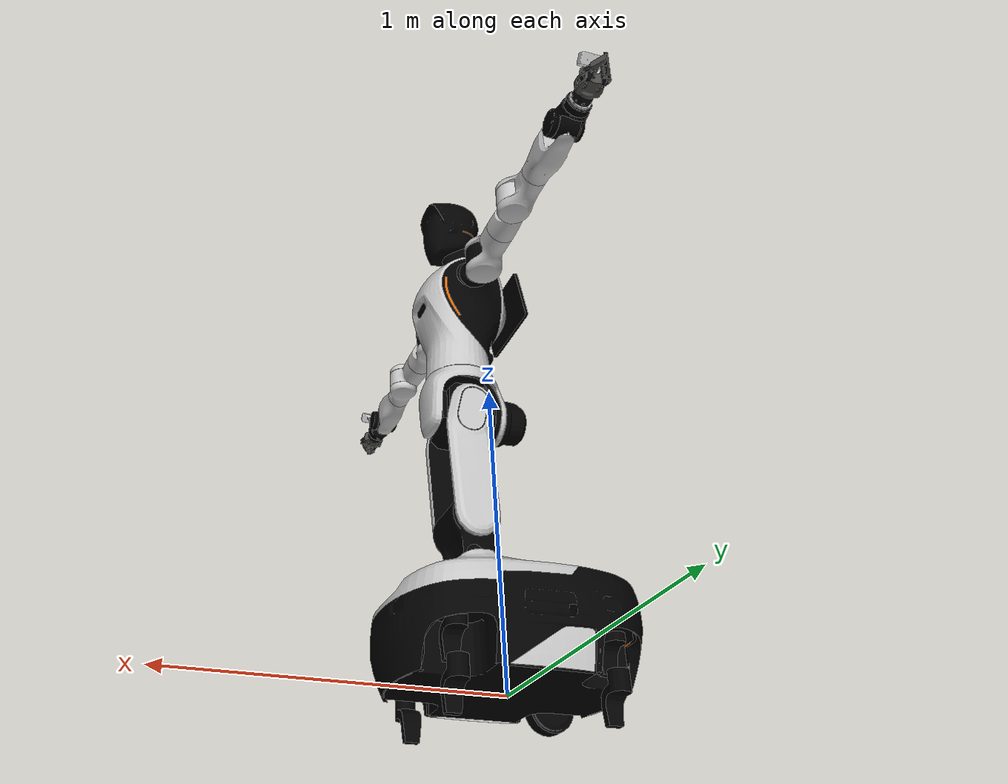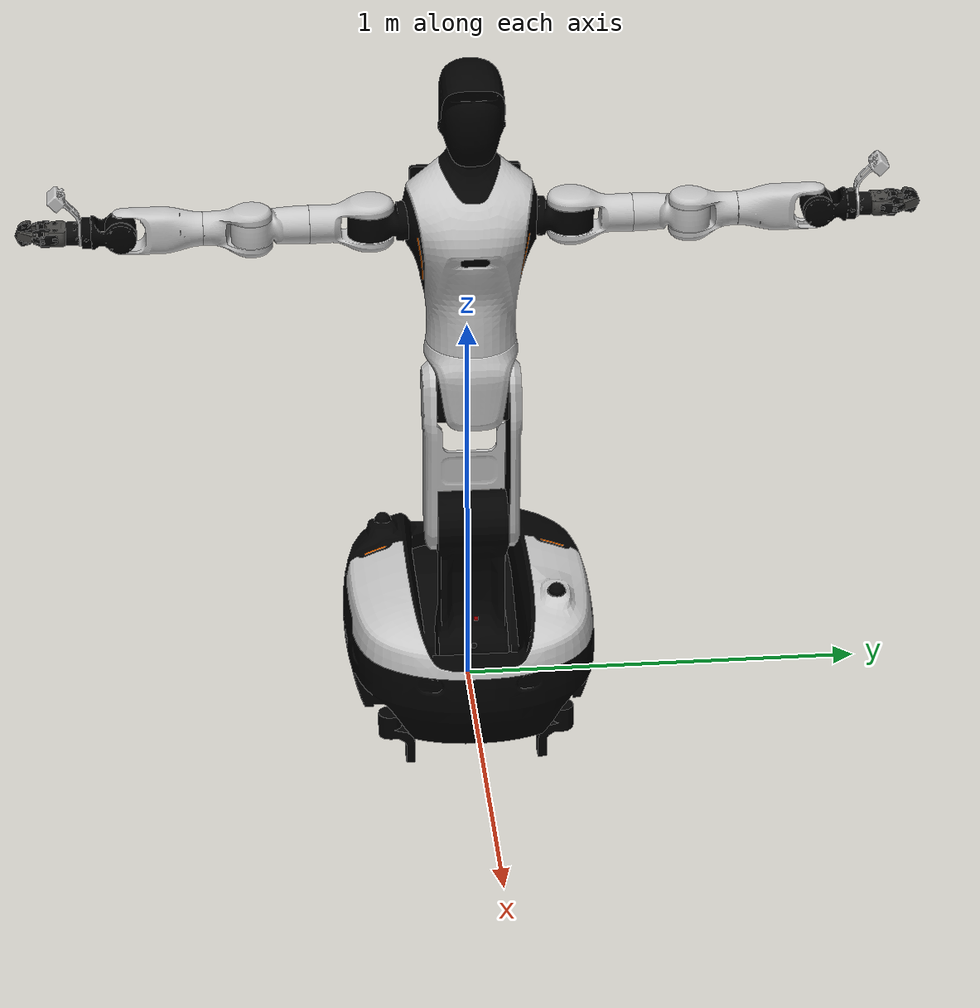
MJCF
<?xml version="1.0" ?>
<mujoco model="agibot_g2">
  <!-- AgiBot G2 (wheeled dual-arm mobile manipulator) for MuJoCo. -->
  <compiler angle="radian" meshdir="meshes/agibot_g2" autolimits="true"/>
  <default>
    <default class="g2_visual">
      <geom type="mesh" contype="0" conaffinity="0" group="2" material="g2_light"/>
    </default>
    <default class="g2_collision">
      <geom group="3" rgba="0.4 0.5 0.6 0.3" condim="3" contype="2" conaffinity="1"/>
    </default>
  </default>
  <asset>
    <mesh name="g2_body_link1" content_type="model/obj" file="g2_body_link1.obj"/>
    <mesh name="g2_convex_body_link2" content_type="model/stl" file="g2_convex_body_link2.STL"/>
    <mesh name="g2_body_link3" content_type="model/obj" file="g2_body_link3.obj"/>
    <mesh name="g2_convex_body_link3" content_type="model/stl" file="g2_convex_body_link3.STL"/>
    <mesh name="g2_convex_body_link4_1" content_type="model/stl" file="g2_convex_body_link4_1.STL"/>
    <mesh name="g2_convex_body_link4_2" content_type="model/stl" file="g2_convex_body_link4_2.STL"/>
    <mesh name="g2_convex_body_link4_3" content_type="model/stl" file="g2_convex_body_link4_3.STL"/>
    <mesh name="g2_convex_body_link5" content_type="model/stl" file="g2_convex_body_link5.STL"/>
    <mesh name="g2_head_link1" content_type="model/obj" file="g2_head_link1.obj"/>
    <mesh name="g2_head_link2" content_type="model/obj" file="g2_head_link2.obj"/>
    <mesh name="g2_convex_head_link3" content_type="model/stl" file="g2_convex_head_link3.STL"/>
    <mesh name="g2_chassis_lwheel_front_link1" content_type="model/obj" file="g2_chassis_lwheel_front_link1.obj"/>
    <mesh name="g2_chassis_lwheel_front_link2" content_type="model/obj" file="g2_chassis_lwheel_front_link2.obj"/>
    <mesh name="g2_chassis_rwheel_front_link1" content_type="model/obj" file="g2_chassis_rwheel_front_link1.obj"/>
    <mesh name="g2_chassis_rwheel_front_link2" content_type="model/obj" file="g2_chassis_rwheel_front_link2.obj"/>
    <mesh name="g2_chassis_rwheel_rear_link1" content_type="model/obj" file="g2_chassis_rwheel_rear_link1.obj"/>
    <mesh name="g2_chassis_rwheel_rear_link2" content_type="model/obj" file="g2_chassis_rwheel_rear_link2.obj"/>
    <mesh name="g2_chassis_lwheel_rear_link1" content_type="model/obj" file="g2_chassis_lwheel_rear_link1.obj"/>
    <mesh name="g2_chassis_lwheel_rear_link2" content_type="model/obj" file="g2_chassis_lwheel_rear_link2.obj"/>
    <mesh name="arm_crs_arm_link1" content_type="model/obj" file="arm_crs_arm_link1.obj"/>
    <mesh name="arm_crs_arm_link2" content_type="model/obj" file="arm_crs_arm_link2.obj"/>
    <mesh name="arm_crs_arm_link3" content_type="model/obj" file="arm_crs_arm_link3.obj"/>
    <mesh name="arm_crs_arm_link4" content_type="model/obj" file="arm_crs_arm_link4.obj"/>
    <mesh name="arm_crs_arm_link5" content_type="model/obj" file="arm_crs_arm_link5.obj"/>
    <mesh name="arm_crs_arm_link6" content_type="model/obj" file="arm_crs_arm_link6.obj"/>
    <mesh name="arm_crs_arm_link7" content_type="model/obj" file="arm_crs_arm_link7.obj"/>
    <mesh name="gripper_omnipicker_camera_link" content_type="model/obj" file="gripper_omnipicker_camera_link.obj"/>
    <mesh name="gripper_omnipicker_convex_camera_link" content_type="model/stl" file="gripper_omnipicker_convex_camera_link.STL"/>
    <mesh name="gripper_omnipicker_convex_base_link" content_type="model/stl" file="gripper_omnipicker_convex_base_link.STL"/>
    <mesh name="gripper_omnipicker_convex_inner_link1" content_type="model/stl" file="gripper_omnipicker_convex_inner_link1.STL"/>
    <mesh name="gripper_omnipicker_convex_inner_link3" content_type="model/stl" file="gripper_omnipicker_convex_inner_link3.STL"/>
    <mesh name="gripper_omnipicker_convex_inner_link4" content_type="model/stl" file="gripper_omnipicker_convex_inner_link4.STL"/>
    <mesh name="gripper_omnipicker_convex_inner_link2" content_type="model/stl" file="gripper_omnipicker_convex_inner_link2.STL"/>
    <mesh name="gripper_omnipicker_convex_outer_link1" content_type="model/stl" file="gripper_omnipicker_convex_outer_link1.STL"/>
    <mesh name="gripper_omnipicker_convex_outer_link3" content_type="model/stl" file="gripper_omnipicker_convex_outer_link3.STL"/>
    <mesh name="gripper_omnipicker_convex_outer_link4" content_type="model/stl" file="gripper_omnipicker_convex_outer_link4.STL"/>
    <mesh name="gripper_omnipicker_convex_outer_link2" content_type="model/stl" file="gripper_omnipicker_convex_outer_link2.STL"/>
    <material name="g2_light" rgba="0.85 0.86 0.88 1"/>
    <material name="g2_dark" rgba="0.15 0.16 0.18 1"/>
    <material name="g2_black" rgba="0.05 0.05 0.05 1"/>
    <mesh name="g2_base_link_m0" file="g2_base_link_m0.obj"/>
    <material name="mat_000000" rgba="0.0000 0.0000 0.0000 1"/>
    <mesh name="g2_base_link_m1" file="g2_base_link_m1.obj"/>
    <material name="mat_c3c3c3" rgba="0.7660 0.7660 0.7660 1"/>
    <mesh name="g2_base_link_m2" file="g2_base_link_m2.obj"/>
    <material name="mat_fa6e00" rgba="0.9800 0.4300 0.0000 1"/>
    <mesh name="g2_body_link2_m0" file="g2_body_link2_m0.obj"/>
    <mesh name="g2_body_link2_m1" file="g2_body_link2_m1.obj"/>
    <mesh name="g2_body_link4_m0" file="g2_body_link4_m0.obj"/>
    <mesh name="g2_body_link4_m1" file="g2_body_link4_m1.obj"/>
    <mesh name="g2_body_link5_m0" file="g2_body_link5_m0.obj"/>
    <mesh name="g2_body_link5_m1" file="g2_body_link5_m1.obj"/>
    <mesh name="g2_body_link5_m2" file="g2_body_link5_m2.obj"/>
    <mesh name="gripper_omnipicker_base_link_m0" file="gripper_omnipicker_base_link_m0.obj"/>
    <material name="mat_474643" rgba="0.2778 0.2744 0.2632 1"/>
    <mesh name="gripper_omnipicker_base_link_m1" file="gripper_omnipicker_base_link_m1.obj"/>
    <material name="mat_707070" rgba="0.4408 0.4408 0.4408 1"/>
    <mesh name="gripper_omnipicker_base_link_m2" file="gripper_omnipicker_base_link_m2.obj"/>
    <material name="mat_171717" rgba="0.0921 0.0921 0.0921 1"/>
    <mesh name="gripper_omnipicker_base_link_m3" file="gripper_omnipicker_base_link_m3.obj"/>
    <material name="mat_0a0a0a" rgba="0.0395 0.0395 0.0395 1"/>
    <mesh name="gripper_omnipicker_inner_link1_m0" file="gripper_omnipicker_inner_link1_m0.obj"/>
    <mesh name="gripper_omnipicker_inner_link1_m1" file="gripper_omnipicker_inner_link1_m1.obj"/>
    <mesh name="gripper_omnipicker_inner_link1_m2" file="gripper_omnipicker_inner_link1_m2.obj"/>
    <mesh name="gripper_omnipicker_inner_link3_m0" file="gripper_omnipicker_inner_link3_m0.obj"/>
    <mesh name="gripper_omnipicker_inner_link3_m1" file="gripper_omnipicker_inner_link3_m1.obj"/>
    <mesh name="gripper_omnipicker_inner_link4_m0" file="gripper_omnipicker_inner_link4_m0.obj"/>
    <mesh name="gripper_omnipicker_inner_link4_m1" file="gripper_omnipicker_inner_link4_m1.obj"/>
    <mesh name="gripper_omnipicker_inner_link4_m2" file="gripper_omnipicker_inner_link4_m2.obj"/>
    <mesh name="gripper_omnipicker_inner_link2_m0" file="gripper_omnipicker_inner_link2_m0.obj"/>
    <mesh name="gripper_omnipicker_inner_link2_m1" file="gripper_omnipicker_inner_link2_m1.obj"/>
    <mesh name="gripper_omnipicker_outer_link1_m0" file="gripper_omnipicker_outer_link1_m0.obj"/>
    <mesh name="gripper_omnipicker_outer_link1_m1" file="gripper_omnipicker_outer_link1_m1.obj"/>
    <mesh name="gripper_omnipicker_outer_link1_m2" file="gripper_omnipicker_outer_link1_m2.obj"/>
    <mesh name="gripper_omnipicker_outer_link3_m0" file="gripper_omnipicker_outer_link3_m0.obj"/>
    <mesh name="gripper_omnipicker_outer_link3_m1" file="gripper_omnipicker_outer_link3_m1.obj"/>
    <mesh name="gripper_omnipicker_outer_link4_m0" file="gripper_omnipicker_outer_link4_m0.obj"/>
    <mesh name="gripper_omnipicker_outer_link4_m1" file="gripper_omnipicker_outer_link4_m1.obj"/>
    <mesh name="gripper_omnipicker_outer_link4_m2" file="gripper_omnipicker_outer_link4_m2.obj"/>
    <mesh name="gripper_omnipicker_outer_link2_m0" file="gripper_omnipicker_outer_link2_m0.obj"/>
    <mesh name="gripper_omnipicker_outer_link2_m1" file="gripper_omnipicker_outer_link2_m1.obj"/>
    <mesh name="g2_head_link3_m0" file="g2_head_link3_m0.obj"/>
    <mesh name="g2_head_link3_m1" file="g2_head_link3_m1.obj"/>
  </asset>
  <worldbody>
    <body name="base_link">
      <!-- mobile base: free joint + odom/imu frame -->
      <freejoint name="base_free"/>
      <site name="base_imu" pos="0 0 0.1" size="0.01" rgba="0 0 0 0"/>
      <!-- ASSUMPTION: 2D nav lidar; source has none. Mount = chassis front, 0.30 m. -->
      <site name="lidar" pos="0.24 0 0.30" size="0.006" rgba="1 0 0 0.6"/>
      <camera name="track" mode="track" pos="-2.4 -2.4 2.0" xyaxes="0.7 -0.7 0 0.3 0.3 0.9"/>
      <geom name="chassis_box" type="box" size="0.28 0.20 0.08" pos="0 0 0.10" class="g2_collision" friction="0.4 0.01 0.001"/>
      <geom name="caster_fl" type="sphere" size="0.03" pos="0.3 0.22 -0.005" class="g2_collision" friction="0.02 0.005 0.0001" rgba="0.2 0.2 0.2 1"/>
      <geom name="caster_fr" type="sphere" size="0.03" pos="0.3 -0.22 -0.005" class="g2_collision" friction="0.02 0.005 0.0001" rgba="0.2 0.2 0.2 1"/>
      <geom name="caster_rl" type="sphere" size="0.03" pos="-0.3 0.22 -0.005" class="g2_collision" friction="0.02 0.005 0.0001" rgba="0.2 0.2 0.2 1"/>
      <geom name="caster_rr" type="sphere" size="0.03" pos="-0.3 -0.22 -0.005" class="g2_collision" friction="0.02 0.005 0.0001" rgba="0.2 0.2 0.2 1"/>
      <inertial pos="0 0 0.15" quat="0 0.707107 0 0.707107" mass="80" diaginertia="5.29894 3.50892 3.11997"/>
      <geom type="mesh" mesh="g2_base_link_m0" class="g2_visual" material="mat_000000"/>
      <geom type="mesh" mesh="g2_base_link_m1" class="g2_visual" material="mat_c3c3c3"/>
      <geom type="mesh" mesh="g2_base_link_m2" class="g2_visual" material="mat_fa6e00"/>
      <body name="body_link1" pos="0.102 0 0.144">
        <inertial pos="0 0 0.175562" mass="10" diaginertia="0.259378 0.244269 0.0390951"/>
        <joint name="idx01_body_joint1" pos="0 0 0" axis="0 1 0" range="-1.0822 0.0001" actuatorfrcrange="-50 50" damping="300.0"/>
        <geom type="mesh" mesh="g2_body_link1" class="g2_visual" material="mat_000000"/>
        <geom name="Cylinder" size="0.089146 0.0766955" quat="0.707107 0.707107 0 0" type="cylinder" class="g2_collision"/>
        <geom name="Cylinder.001" size="0.089146 0.0766955" pos="0 0 0.36" quat="0.707107 0.707107 0 0" type="cylinder" class="g2_collision"/>
        <geom name="Cube" size="0.042797 0.088309 0.175644" pos="-0.024457 0 0.18" type="box" class="g2_collision"/>
        <geom name="Cube.001" size="0.0562935 0.013531 0.120414" pos="-0.009824 0.075429 0.180136" type="box" class="g2_collision"/>
        <geom name="Cube.002" size="0.0562935 0.013531 0.120414" pos="-0.009824 -0.075429 0.180136" type="box" class="g2_collision"/>
        <body name="body_link2" pos="0 0 0.36">
          <inertial pos="0 0 0.185408" mass="12.4" diaginertia="0.360854 0.252113 0.147625"/>
          <joint name="idx02_body_joint2" pos="0 0 0" axis="0 1 0" range="-0.0001 2.653" actuatorfrcrange="-50 50" damping="300.0"/>
          <geom type="mesh" mesh="g2_body_link2_m0" class="g2_visual" material="mat_c3c3c3"/>
          <geom type="mesh" mesh="g2_body_link2_m1" class="g2_visual" material="mat_000000"/>
          <geom name="body_link2_convex_0" type="mesh" mesh="g2_convex_body_link2" class="g2_collision"/>
          <body name="body_link3" pos="0 0 0.38">
            <inertial pos="0 0 0" quat="0.5 0.5 -0.5 0.5" mass="7.3" diaginertia="0.0340642 0.0295826 0.0276827"/>
            <joint name="idx03_body_joint3" pos="0 0 0" axis="0 1 0" range="-1.907 1.039" actuatorfrcrange="-50 50" damping="300.0"/>
            <geom type="mesh" mesh="g2_body_link3" class="g2_visual" material="mat_000000"/>
            <geom name="body_link3_convex_0" type="mesh" mesh="g2_convex_body_link3" class="g2_collision"/>
            <body name="body_link4">
              <inertial pos="-0.0714498 0 0.0300405" quat="0 0.707107 0 0.707107" mass="6.25" diaginertia="0.0780649 0.0780649 0.0780649"/>
              <joint name="idx04_body_joint4" pos="0 0 0" axis="1 0 0" range="-0.4364 0.4364" actuatorfrcrange="-50 50" damping="300.0"/>
              <geom type="mesh" mesh="g2_body_link4_m0" class="g2_visual" material="mat_c3c3c3"/>
              <geom type="mesh" mesh="g2_body_link4_m1" class="g2_visual" material="mat_000000"/>
              <geom name="body_link4_convex_1" type="mesh" mesh="g2_convex_body_link4_1" class="g2_collision"/>
              <geom name="body_link4_convex_2" type="mesh" mesh="g2_convex_body_link4_2" class="g2_collision"/>
              <geom name="body_link4_convex_3" type="mesh" mesh="g2_convex_body_link4_3" class="g2_collision"/>
              <body name="body_link5" pos="0 0 0.149">
                <inertial pos="-0.0244424 0 0.136945" mass="7.9" diaginertia="0.249907 0.235349 0.0715655"/>
                <joint name="idx05_body_joint5" pos="0 0 0" axis="0 0 1" range="-3.0456 3.0456" actuatorfrcrange="-50 50" damping="300.0"/>
                <geom type="mesh" mesh="g2_body_link5_m0" class="g2_visual" material="mat_c3c3c3"/>
                <geom type="mesh" mesh="g2_body_link5_m1" class="g2_visual" material="mat_000000"/>
                <geom type="mesh" mesh="g2_body_link5_m2" class="g2_visual" material="mat_fa6e00"/>
                <geom name="body_link5_convex_0" type="mesh" mesh="g2_convex_body_link5" class="g2_collision"/>
                <body name="arm_base_link" pos="0 0 0.3085" quat="0.707107 -0.707107 0 0">
                  <inertial pos="0 0 0" mass="0.001" diaginertia="1e-06 1e-06 1e-06"/>
                  <body name="arm_l_link1" pos="0 0 0.069">
                    <inertial pos="1.875e-05 0.006003 0.1438" mass="2.0926" diaginertia="0.00524521 0.00455565 0.00237986"/>
                    <joint name="idx21_arm_l_joint1" pos="0 0 0" axis="0 0 1" range="-3.0718 3.0718" actuatorfrcrange="-108 108" frictionloss="1" damping="10.0"/>
                    <geom name="default_visual" type="mesh" mesh="arm_crs_arm_link1" class="g2_visual" material="mat_000000"/>
                    <geom name="arm_l_link1_coarse_0" size="0.0630031" pos="-0.000495911 0 0.178532" class="g2_collision"/>
                    <geom name="arm_l_link1_coarse_1" size="0.063101" pos="-0.00906754 -0.00452661 0.121429" class="g2_collision"/>
                    <body name="arm_l_link2" pos="0 0 0.1745" quat="0.707105 0.707108 0 0">
                      <inertial pos="-7.03e-06 0.05542 0.010995" quat="0.5 0.5 -0.5 0.5" mass="1.9432" diaginertia="0.00958569 0.00778924 0.00428622"/>
                      <joint name="idx22_arm_l_joint2" pos="0 0 0" axis="0 0 1" range="-2.0595 2.0595" actuatorfrcrange="-108 108" frictionloss="1" damping="10.0"/>
                      <geom type="mesh" mesh="arm_crs_arm_link2" class="g2_visual" material="mat_c3c3c3"/>
                      <geom name="arm_l_link2_coarse_0" size="0.0749826" pos="-0.00497437 0.00695419 -0.013385" class="g2_collision"/>
                      <geom name="arm_l_link2_coarse_1" size="0.0749834" pos="-0.00450134 0.00721741 0.0133584" class="g2_collision"/>
                      <geom name="arm_l_link2_coarse_2" size="0.0616553" pos="0.00102234 0.10947 0.00125504" class="g2_collision"/>
                      <body name="arm_l_link3" quat="0.707105 -0.707108 0 0">
                        <inertial pos="0.0087411 0.0019043 0.23487" mass="1.6913" diaginertia="0.00610928 0.0057534 0.00165978"/>
                        <joint name="idx23_arm_l_joint3" pos="0 0 0" axis="0 0 1" range="-3.0718 3.0718" actuatorfrcrange="-35 35" frictionloss="0.5" damping="10.0"/>
                        <geom type="mesh" mesh="arm_crs_arm_link3" class="g2_visual" material="mat_c3c3c3"/>
                        <geom name="arm_l_link3_coarse_0" size="0.0660352" pos="0.000732422 -0.00011957 0.195026" class="g2_collision"/>
                        <geom name="arm_l_link3_coarse_1" size="0.0616288" pos="0.0148926 -0.00160574 0.284405" class="g2_collision"/>
                        <body name="arm_l_link4" pos="0.018 0 0.287" quat="0.707105 0.707108 0 0">
                          <inertial pos="-0.0086935 0.045984 0.011135" quat="0.5 0.5 -0.5 0.5" mass="1.5332" diaginertia="0.0054013 0.00422288 0.00279916"/>
                          <joint name="idx24_arm_l_joint4" pos="0 0 0" axis="0 0 1" range="-2.4959 1.0123" actuatorfrcrange="-35 35" frictionloss="0.5" damping="10.0"/>
                          <geom type="mesh" mesh="arm_crs_arm_link4" class="g2_visual" material="mat_c3c3c3"/>
                          <geom name="arm_l_link4_coarse_0" size="0.0699134" pos="-0.00317383 0.00458936 -0.0118336" class="g2_collision"/>
                          <geom name="arm_l_link4_coarse_1" size="0.0690759" pos="-0.00482178 0.00458936 0.0118151" class="g2_collision"/>
                          <geom name="arm_l_link4_coarse_2" size="0.0545313" pos="-0.0123291 0.0924999 0.00394058" class="g2_collision"/>
                          <body name="arm_l_link5" pos="-0.018 0 0" quat="0.707105 -0.707108 0 0">
                            <inertial pos="-0.00036467 0.0001479 0.19902" mass="2.0095" diaginertia="0.0060028 0.00530075 0.00255015"/>
                            <joint name="idx25_arm_l_joint5" pos="0 0 0" axis="0 0 1" range="-3.0718 3.0718" actuatorfrcrange="-35 35" frictionloss="0.5" damping="10.0"/>
                            <geom type="mesh" mesh="arm_crs_arm_link5" class="g2_visual" material="mat_c3c3c3"/>
                            <geom name="arm_l_link5_coarse_0" size="0.052102" pos="0.00146484 0.0244125 0.217129" class="g2_collision"/>
                            <geom name="arm_l_link5_coarse_1" size="0.05214" pos="-0.00158691 -0.0244813 0.217918" class="g2_collision"/>
                            <geom name="arm_l_link5_coarse_2" size="0.052102" pos="0.00146484 0.0284125 0.287129" class="g2_collision"/>
                            <geom name="arm_l_link5_coarse_3" size="0.05214" pos="-0.00158691 -0.0284813 0.289178" class="g2_collision"/>
                            <geom name="arm_l_link5_coarse_4" size="0.0544705" pos="-0.000976563 0.00317946 0.156815" class="g2_collision"/>
                            <body name="arm_l_link6" pos="0 0 0.314" quat="0.707105 0.707108 0 0">
                              <inertial pos="-0.004911 0.00027206 -8.14e-05" mass="0.67002" diaginertia="0.000502625 0.000452202 0.00042586"/>
                              <joint name="idx26_arm_l_joint6" pos="0 0 0" axis="0 0 1" range="-1.0123 1.0123" actuatorfrcrange="-18 18" frictionloss="0.2" damping="10.0"/>
                              <geom type="mesh" mesh="arm_crs_arm_link6" class="g2_visual" material="mat_000000"/>
                              <geom name="arm_l_link6_coarse_0" size="0.0523497" class="g2_collision"/>
                              <body name="arm_l_link7" quat="0.499998 0.5 0.500002 0.5">
                                <inertial pos="0.0451337 4.672e-05 0.00607482" quat="0.5 0.5 0.5 0.5" mass="0.31657" diaginertia="0.000847986 0.000640472 0.000422024"/>
                                <joint name="idx27_arm_l_joint7" pos="0 0 0" axis="0 0 1" range="-1.5359 1.5359" actuatorfrcrange="-18 18" frictionloss="0.2" damping="10.0"/>
                                <geom type="mesh" mesh="arm_crs_arm_link7" class="g2_visual" material="mat_000000"/>
                                <geom name="arm_l_link7_coarse_0" size="0.04458" pos="0.0591483 0 0" class="g2_collision"/>
                                <geom name="arm_l_link7_coarse_1" size="0.04458" pos="0 0 0.02" class="g2_collision"/>
                                <geom name="arm_l_link7_coarse_2" size="0.04458" pos="0 0 -0.02" class="g2_collision"/>
                                <body name="arm_l_end_link" pos="0.095 0 0" quat="-2.59734e-06 0.707105 2.59735e-06 0.707108">
                                  <inertial pos="0 0 0" mass="0.001" diaginertia="1e-06 1e-06 1e-06"/>
                                  <body name="gripper_l_camera_link" quat="0.707107 0 0 0.707107">
                                    <inertial pos="0.012045 0.074409 0.04124" quat="0 0.707107 0 0.707107" mass="0.22805" diaginertia="0.00315368 0.00287705 0.000351349"/>
                                    <geom type="mesh" mesh="gripper_omnipicker_camera_link" class="g2_visual" material="mat_c3c3c3"/>
                                    <geom name="gripper_l_camera_link_convex_0" type="mesh" mesh="gripper_omnipicker_convex_camera_link" class="g2_collision"/>
                                  </body>
                                  <body name="gripper_l_base_link" pos="0 0 0.0051" quat="0.707107 0 0 0.707107">
                                    <inertial pos="-0.00013356 1.5301e-05 0.03322" mass="0.23588" diaginertia="0.000237595 0.00020119 0.000140512"/>
                                    <geom type="mesh" mesh="gripper_omnipicker_base_link_m0" class="g2_visual" material="mat_474643"/>
                                    <geom type="mesh" mesh="gripper_omnipicker_base_link_m1" class="g2_visual" material="mat_707070"/>
                                    <geom type="mesh" mesh="gripper_omnipicker_base_link_m2" class="g2_visual" material="mat_171717"/>
                                    <geom type="mesh" mesh="gripper_omnipicker_base_link_m3" class="g2_visual" material="mat_0a0a0a"/>
                                    <geom name="gripper_l_base_link_convex_0" type="mesh" mesh="gripper_omnipicker_convex_base_link" class="g2_collision"/>
                                    <body name="gripper_l_inner_link1" pos="0 -0.0195 0.0565" quat="0.707092 -0.00464826 -0.707092 -0.00464826">
                                      <inertial pos="0.0094685 0.0068806 6.5437e-05" quat="0.5 0.5 -0.5 0.5" mass="0.025428" diaginertia="1.0471e-05 9.17208e-06 3.8334e-06"/>
                                      <joint name="idx31_gripper_l_inner_joint1" pos="0 0 0" axis="0 0 1" range="-0.785398 0" actuatorfrcrange="-10 10" damping="0.5"/>
                                      <geom type="mesh" mesh="gripper_omnipicker_inner_link1_m0" class="g2_visual" material="mat_0a0a0a"/>
                                      <geom type="mesh" mesh="gripper_omnipicker_inner_link1_m1" class="g2_visual" material="mat_707070"/>
                                      <geom type="mesh" mesh="gripper_omnipicker_inner_link1_m2" class="g2_visual" material="mat_171717"/>
                                      <geom name="gripper_l_inner_link1_convex_0" type="mesh" mesh="gripper_omnipicker_convex_inner_link1" class="g2_collision"/>
                                      <body name="gripper_l_inner_link3" pos="0.030852 -0.018551 0" quat="0 1 0 0">
                                        <inertial pos="0.0088027 -0.007035 1.6424e-05" quat="0.5 0.5 0.5 0.5" mass="0.0040132" diaginertia="3.84239e-07 3.61856e-07 7.91304e-08"/>
                                        <joint name="idx32_gripper_l_inner_joint3" pos="0 0 0" axis="0 0 1" range="-2 2" actuatorfrcrange="-10 10" damping="0.5"/>
                                        <geom type="mesh" mesh="gripper_omnipicker_inner_link3_m0" class="g2_visual" material="mat_0a0a0a"/>
                                        <geom type="mesh" mesh="gripper_omnipicker_inner_link3_m1" class="g2_visual" material="mat_707070"/>
                                        <geom name="gripper_l_inner_link3_convex_0" type="mesh" mesh="gripper_omnipicker_convex_inner_link3" class="g2_collision"/>
                                        <body name="gripper_l_inner_link4" pos="0.018118 -0.01574 0">
                                          <inertial pos="0.012508 -0.0079729 9.4339e-05" quat="0.5 0.5 0.5 0.5" mass="0.018029" diaginertia="4.22802e-06 3.98173e-06 1.34445e-06"/>
                                          <joint name="idx33_gripper_l_inner_joint4" pos="0 0 0" axis="0 0 1" range="-2 2" actuatorfrcrange="-10 10" damping="0.5"/>
                                          <geom type="mesh" mesh="gripper_omnipicker_inner_link4_m0" class="g2_visual" material="mat_0a0a0a"/>
                                          <geom type="mesh" mesh="gripper_omnipicker_inner_link4_m1" class="g2_visual" material="mat_707070"/>
                                          <geom type="mesh" mesh="gripper_omnipicker_inner_link4_m2" class="g2_visual" material="mat_474643"/>
                                          <geom name="gripper_l_inner_link4_convex_0" type="mesh" mesh="gripper_omnipicker_convex_inner_link4" class="g2_collision"/>
                                          <body name="gripper_l_inner_link2" pos="0 -0.01 0">
                                            <inertial pos="0.014869 -0.0036066 0.00029307" quat="0.5 0.5 0.5 0.5" mass="0.022591" diaginertia="2.98054e-05 2.54035e-05 4.81132e-06"/>
                                            <joint name="idx39_gripper_l_inner_joint0" pos="0 0 0" axis="0 0 1" range="-2 2" actuatorfrcrange="-10 10" damping="0.5"/>
                                            <geom type="mesh" mesh="gripper_omnipicker_inner_link2_m0" class="g2_visual" material="mat_0a0a0a"/>
                                            <geom type="mesh" mesh="gripper_omnipicker_inner_link2_m1" class="g2_visual" material="mat_707070"/>
                                            <geom name="gripper_l_inner_link2_convex_0" type="mesh" mesh="gripper_omnipicker_convex_inner_link2" class="g2_collision"/>
                                          </body>
                                        </body>
                                      </body>
                                    </body>
                                    <body name="gripper_l_outer_link1" pos="0 0.0195 0.0565" quat="0.707092 -0.00464826 -0.707092 -0.00464826">
                                      <inertial pos="0.0095051 -0.0068479 6.8268e-05" quat="0.5 0.5 -0.5 0.5" mass="0.025428" diaginertia="1.04131e-05 9.14703e-06 3.8019e-06"/>
                                      <joint name="idx41_gripper_l_outer_joint1" pos="0 0 0" axis="0 0 1" range="0 0.785398" actuatorfrcrange="-10 10" damping="0.5"/>
                                      <geom type="mesh" mesh="gripper_omnipicker_outer_link1_m0" class="g2_visual" material="mat_0a0a0a"/>
                                      <geom type="mesh" mesh="gripper_omnipicker_outer_link1_m1" class="g2_visual" material="mat_707070"/>
                                      <geom type="mesh" mesh="gripper_omnipicker_outer_link1_m2" class="g2_visual" material="mat_171717"/>
                                      <geom name="gripper_l_outer_link1_convex_0" type="mesh" mesh="gripper_omnipicker_convex_outer_link1" class="g2_collision"/>
                                      <body name="gripper_l_outer_link3" pos="0.030852 0.018551 0" quat="0 1 0 0">
                                        <inertial pos="0.0088027 0.007035 -1.6424e-05" quat="0.5 0.5 0.5 0.5" mass="0.0040132" diaginertia="3.84239e-07 3.61856e-07 7.91304e-08"/>
                                        <joint name="idx42_gripper_l_outer_joint3" pos="0 0 0" axis="0 0 1" range="-2 2" actuatorfrcrange="-10 10" damping="0.5"/>
                                        <geom type="mesh" mesh="gripper_omnipicker_outer_link3_m0" class="g2_visual" material="mat_0a0a0a"/>
                                        <geom type="mesh" mesh="gripper_omnipicker_outer_link3_m1" class="g2_visual" material="mat_707070"/>
                                        <geom name="gripper_l_outer_link3_convex_0" type="mesh" mesh="gripper_omnipicker_convex_outer_link3" class="g2_collision"/>
                                        <body name="gripper_l_outer_link4" pos="0.018118 0.01574 0">
                                          <inertial pos="0.016206 0.0094593 4.7668e-05" mass="0.035835" diaginertia="1.72785e-05 1.14805e-05 5.89724e-06"/>
                                          <joint name="idx43_gripper_l_outer_joint4" pos="0 0 0" axis="0 0 1" range="-2 2" actuatorfrcrange="-10 10" damping="0.5"/>
                                          <geom type="mesh" mesh="gripper_omnipicker_outer_link4_m0" class="g2_visual" material="mat_0a0a0a"/>
                                          <geom type="mesh" mesh="gripper_omnipicker_outer_link4_m1" class="g2_visual" material="mat_707070"/>
                                          <geom type="mesh" mesh="gripper_omnipicker_outer_link4_m2" class="g2_visual" material="mat_474643"/>
                                          <geom name="gripper_l_outer_link4_convex_0" type="mesh" mesh="gripper_omnipicker_convex_outer_link4" class="g2_collision"/>
                                          <body name="gripper_l_outer_link2" pos="0 0.01 0">
                                            <inertial pos="0.016268 0.0040555 0.00030323" quat="0.5 0.5 0.5 0.5" mass="0.025142" diaginertia="3.55715e-05 2.94437e-05 6.69628e-06"/>
                                            <joint name="idx49_gripper_l_outer_joint0" pos="0 0 0" axis="0 0 1" range="-2 2" actuatorfrcrange="-10 10" damping="0.5"/>
                                            <geom type="mesh" mesh="gripper_omnipicker_outer_link2_m0" class="g2_visual" material="mat_0a0a0a"/>
                                            <geom type="mesh" mesh="gripper_omnipicker_outer_link2_m1" class="g2_visual" material="mat_707070"/>
                                            <geom name="gripper_l_outer_link2_convex_0" type="mesh" mesh="gripper_omnipicker_convex_outer_link2" class="g2_collision"/>
                                          </body>
                                        </body>
                                      </body>
                                    </body>
                                  </body>
                                </body>
                              </body>
                            </body>
                          </body>
                        </body>
                      </body>
                    </body>
                  </body>
                  <body name="arm_r_link1" pos="0 0 -0.069" quat="0 1 0 0">
                    <inertial pos="1.875e-05 0.006003 0.1438" mass="2.0926" diaginertia="0.00524521 0.00455565 0.00237986"/>
                    <joint name="idx61_arm_r_joint1" pos="0 0 0" axis="0 0 1" range="-3.0718 3.0718" actuatorfrcrange="-108 108" frictionloss="1" damping="10.0"/>
                    <geom type="mesh" mesh="arm_crs_arm_link1" class="g2_visual" material="mat_000000"/>
                    <geom name="arm_r_link1_coarse_0" size="0.0630031" pos="-0.000495911 0 0.178532" class="g2_collision"/>
                    <geom name="arm_r_link1_coarse_1" size="0.063101" pos="-0.00906754 -0.00452661 0.121429" class="g2_collision"/>
                    <body name="arm_r_link2" pos="0 0 0.1745" quat="0.707107 0.707107 0 0">
                      <inertial pos="-7.03e-06 0.05542 0.010995" quat="0.5 0.5 -0.5 0.5" mass="1.9432" diaginertia="0.00958569 0.00778924 0.00428622"/>
                      <joint name="idx62_arm_r_joint2" pos="0 0 0" axis="0 0 1" range="-2.0595 2.0595" actuatorfrcrange="-108 108" frictionloss="1" damping="10.0"/>
                      <geom type="mesh" mesh="arm_crs_arm_link2" class="g2_visual" material="mat_c3c3c3"/>
                      <geom name="arm_r_link2_coarse_0" size="0.0749826" pos="-0.00497437 0.00695419 -0.013385" class="g2_collision"/>
                      <geom name="arm_r_link2_coarse_1" size="0.0749834" pos="-0.00450134 0.00721741 0.0133584" class="g2_collision"/>
                      <geom name="arm_r_link2_coarse_2" size="0.0616553" pos="0.00102234 0.10947 0.00125504" class="g2_collision"/>
                      <body name="arm_r_link3" quat="0.707107 -0.707107 0 0">
                        <inertial pos="0.0087411 0.0019043 0.23487" mass="1.6913" diaginertia="0.00610928 0.0057534 0.00165978"/>
                        <joint name="idx63_arm_r_joint3" pos="0 0 0" axis="0 0 1" range="-3.0718 3.0718" actuatorfrcrange="-35 35" frictionloss="0.5" damping="10.0"/>
                        <geom type="mesh" mesh="arm_crs_arm_link3" class="g2_visual" material="mat_c3c3c3"/>
                        <geom name="arm_r_link3_coarse_0" size="0.0660352" pos="0.000732422 -0.00011957 0.195026" class="g2_collision"/>
                        <geom name="arm_r_link3_coarse_1" size="0.0616288" pos="0.0148926 -0.00160574 0.284405" class="g2_collision"/>
                        <body name="arm_r_link4" pos="0.018 0 0.287" quat="0.707107 0.707107 0 0">
                          <inertial pos="-0.0086935 0.045984 0.011135" quat="0.5 0.5 -0.5 0.5" mass="1.5332" diaginertia="0.0054013 0.00422288 0.00279916"/>
                          <joint name="idx64_arm_r_joint4" pos="0 0 0" axis="0 0 1" range="-2.4959 1.0123" actuatorfrcrange="-35 35" frictionloss="0.5" damping="10.0"/>
                          <geom type="mesh" mesh="arm_crs_arm_link4" class="g2_visual" material="mat_c3c3c3"/>
                          <geom name="arm_r_link4_coarse_0" size="0.0699134" pos="-0.00317383 0.00458936 -0.0118336" class="g2_collision"/>
                          <geom name="arm_r_link4_coarse_1" size="0.0690759" pos="-0.00482178 0.00458936 0.0118151" class="g2_collision"/>
                          <geom name="arm_r_link4_coarse_2" size="0.0545313" pos="-0.0123291 0.0924999 0.00394058" class="g2_collision"/>
                          <body name="arm_r_link5" pos="-0.018 0 0" quat="0.707107 -0.707107 0 0">
                            <inertial pos="0.00036663 -0.00041429 0.198891" mass="1.9854" diaginertia="0.00592806 0.00523648 0.00251751"/>
                            <joint name="idx65_arm_r_joint5" pos="0 0 0" axis="0 0 1" range="-3.0718 3.0718" actuatorfrcrange="-35 35" frictionloss="0.5" damping="10.0"/>
                            <geom type="mesh" mesh="arm_crs_arm_link5" class="g2_visual" material="mat_c3c3c3"/>
                            <geom name="arm_r_link5_coarse_0" size="0.052102" pos="0.00146484 0.0244125 0.217129" class="g2_collision"/>
                            <geom name="arm_r_link5_coarse_1" size="0.05214" pos="-0.00158691 -0.0244813 0.217918" class="g2_collision"/>
                            <geom name="arm_r_link5_coarse_2" size="0.052102" pos="0.00146484 0.0284125 0.287129" class="g2_collision"/>
                            <geom name="arm_r_link5_coarse_3" size="0.05214" pos="-0.00158691 -0.0284813 0.289178" class="g2_collision"/>
                            <geom name="arm_r_link5_coarse_4" size="0.0544705" pos="-0.000976563 0.00317946 0.156815" class="g2_collision"/>
                            <body name="arm_r_link6" pos="0 0 0.314" quat="0.707107 0.707107 0 0">
                              <inertial pos="-0.00458177 -0.00027029 9.098e-05" mass="0.645948" diaginertia="0.000484494 0.00043524 0.000409886"/>
                              <joint name="idx66_arm_r_joint6" pos="0 0 0" axis="0 0 1" range="-1.0123 1.0123" actuatorfrcrange="-18 18" frictionloss="0.2" damping="10.0"/>
                              <geom type="mesh" mesh="arm_crs_arm_link6" class="g2_visual" material="mat_000000"/>
                              <geom name="arm_r_link6_coarse_0" size="0.0523497" class="g2_collision"/>
                              <body name="arm_r_link7" quat="0.5 0.5 0.5 0.5">
                                <inertial pos="0.0451337 4.672e-05 0.00607482" quat="0.5 0.5 0.5 0.5" mass="0.31658" diaginertia="0.000848013 0.000640492 0.000422037"/>
                                <joint name="idx67_arm_r_joint7" pos="0 0 0" axis="0 0 1" range="-1.5359 1.5359" actuatorfrcrange="-18 18" frictionloss="0.2" damping="10.0"/>
                                <geom type="mesh" mesh="arm_crs_arm_link7" class="g2_visual" material="mat_000000"/>
                                <geom name="arm_r_link7_coarse_0" size="0.04458" pos="0.0591483 0 0" class="g2_collision"/>
                                <geom name="arm_r_link7_coarse_1" size="0.04458" pos="0 0 0.02" class="g2_collision"/>
                                <geom name="arm_r_link7_coarse_2" size="0.04458" pos="0 0 -0.02" class="g2_collision"/>
                                <body name="arm_r_end_link" pos="0.095 0 0" quat="0 0.707107 0 0.707107">
                                  <inertial pos="0 0 0" mass="0.001" diaginertia="1e-06 1e-06 1e-06"/>
                                  <body name="gripper_r_camera_link" quat="0.707107 0 0 -0.707107">
                                    <inertial pos="0.012045 0.074409 0.04124" quat="0 0.707107 0 0.707107" mass="0.22805" diaginertia="0.00315368 0.00287705 0.000351349"/>
                                    <geom type="mesh" mesh="gripper_omnipicker_camera_link" class="g2_visual" material="mat_c3c3c3"/>
                                    <geom name="gripper_r_camera_link_convex_0" type="mesh" mesh="gripper_omnipicker_convex_camera_link" class="g2_collision"/>
                                  </body>
                                  <body name="gripper_r_base_link" pos="0 0 0.0051" quat="0.707107 0 0 0.707107">
                                    <inertial pos="-0.00013356 1.5301e-05 0.03322" mass="0.23588" diaginertia="0.000237595 0.00020119 0.000140512"/>
                                    <geom type="mesh" mesh="gripper_omnipicker_base_link_m0" class="g2_visual" material="mat_474643"/>
                                    <geom type="mesh" mesh="gripper_omnipicker_base_link_m1" class="g2_visual" material="mat_707070"/>
                                    <geom type="mesh" mesh="gripper_omnipicker_base_link_m2" class="g2_visual" material="mat_171717"/>
                                    <geom type="mesh" mesh="gripper_omnipicker_base_link_m3" class="g2_visual" material="mat_0a0a0a"/>
                                    <geom name="gripper_r_base_link_convex_0" type="mesh" mesh="gripper_omnipicker_convex_base_link" class="g2_collision"/>
                                    <body name="gripper_r_inner_link1" pos="0 -0.0195 0.0565" quat="0.707092 -0.00464826 -0.707092 -0.00464826">
                                      <inertial pos="0.0094685 0.0068806 6.5437e-05" quat="0.5 0.5 -0.5 0.5" mass="0.025428" diaginertia="1.0471e-05 9.17208e-06 3.8334e-06"/>
                                      <joint name="idx71_gripper_r_inner_joint1" pos="0 0 0" axis="0 0 1" range="-0.785398 0" actuatorfrcrange="-10 10" damping="0.5"/>
                                      <geom type="mesh" mesh="gripper_omnipicker_inner_link1_m0" class="g2_visual" material="mat_0a0a0a"/>
                                      <geom type="mesh" mesh="gripper_omnipicker_inner_link1_m1" class="g2_visual" material="mat_707070"/>
                                      <geom type="mesh" mesh="gripper_omnipicker_inner_link1_m2" class="g2_visual" material="mat_171717"/>
                                      <geom name="gripper_r_inner_link1_convex_0" type="mesh" mesh="gripper_omnipicker_convex_inner_link1" class="g2_collision"/>
                                      <body name="gripper_r_inner_link3" pos="0.030852 -0.018551 0" quat="0 1 0 0">
                                        <inertial pos="0.0088027 -0.007035 1.6424e-05" quat="0.5 0.5 0.5 0.5" mass="0.0040132" diaginertia="3.84239e-07 3.61856e-07 7.91304e-08"/>
                                        <joint name="idx72_gripper_r_inner_joint3" pos="0 0 0" axis="0 0 1" range="-2 2" actuatorfrcrange="-10 10" damping="0.5"/>
                                        <geom type="mesh" mesh="gripper_omnipicker_inner_link3_m0" class="g2_visual" material="mat_0a0a0a"/>
                                        <geom type="mesh" mesh="gripper_omnipicker_inner_link3_m1" class="g2_visual" material="mat_707070"/>
                                        <geom name="gripper_r_inner_link3_convex_0" type="mesh" mesh="gripper_omnipicker_convex_inner_link3" class="g2_collision"/>
                                        <body name="gripper_r_inner_link4" pos="0.018118 -0.01574 0">
                                          <inertial pos="0.012508 -0.0079729 9.4339e-05" quat="0.5 0.5 0.5 0.5" mass="0.018029" diaginertia="4.22802e-06 3.98173e-06 1.34445e-06"/>
                                          <joint name="idx73_gripper_r_inner_joint4" pos="0 0 0" axis="0 0 1" range="-2 2" actuatorfrcrange="-10 10" damping="0.5"/>
                                          <geom type="mesh" mesh="gripper_omnipicker_inner_link4_m0" class="g2_visual" material="mat_0a0a0a"/>
                                          <geom type="mesh" mesh="gripper_omnipicker_inner_link4_m1" class="g2_visual" material="mat_707070"/>
                                          <geom type="mesh" mesh="gripper_omnipicker_inner_link4_m2" class="g2_visual" material="mat_474643"/>
                                          <geom name="gripper_r_inner_link4_convex_0" type="mesh" mesh="gripper_omnipicker_convex_inner_link4" class="g2_collision"/>
                                          <body name="gripper_r_inner_link2" pos="0 -0.01 0">
                                            <inertial pos="0.014869 -0.0036066 0.00029307" quat="0.5 0.5 0.5 0.5" mass="0.022591" diaginertia="2.98054e-05 2.54035e-05 4.81132e-06"/>
                                            <joint name="idx79_gripper_r_inner_joint0" pos="0 0 0" axis="0 0 1" range="-2 2" actuatorfrcrange="-10 10" damping="0.5"/>
                                            <geom type="mesh" mesh="gripper_omnipicker_inner_link2_m0" class="g2_visual" material="mat_0a0a0a"/>
                                            <geom type="mesh" mesh="gripper_omnipicker_inner_link2_m1" class="g2_visual" material="mat_707070"/>
                                            <geom name="gripper_r_inner_link2_convex_0" type="mesh" mesh="gripper_omnipicker_convex_inner_link2" class="g2_collision"/>
                                          </body>
                                        </body>
                                      </body>
                                    </body>
                                    <body name="gripper_r_outer_link1" pos="0 0.0195 0.0565" quat="0.707092 -0.00464826 -0.707092 -0.00464826">
                                      <inertial pos="0.0095051 -0.0068479 6.8268e-05" quat="0.5 0.5 -0.5 0.5" mass="0.025428" diaginertia="1.04131e-05 9.14703e-06 3.8019e-06"/>
                                      <joint name="idx81_gripper_r_outer_joint1" pos="0 0 0" axis="0 0 1" range="0 0.785398" actuatorfrcrange="-10 10" damping="0.5"/>
                                      <geom type="mesh" mesh="gripper_omnipicker_outer_link1_m0" class="g2_visual" material="mat_0a0a0a"/>
                                      <geom type="mesh" mesh="gripper_omnipicker_outer_link1_m1" class="g2_visual" material="mat_707070"/>
                                      <geom type="mesh" mesh="gripper_omnipicker_outer_link1_m2" class="g2_visual" material="mat_171717"/>
                                      <geom name="gripper_r_outer_link1_convex_0" type="mesh" mesh="gripper_omnipicker_convex_outer_link1" class="g2_collision"/>
                                      <body name="gripper_r_outer_link3" pos="0.030852 0.018551 0" quat="0 1 0 0">
                                        <inertial pos="0.0088027 0.007035 -1.6424e-05" quat="0.5 0.5 0.5 0.5" mass="0.0040132" diaginertia="3.84239e-07 3.61856e-07 7.91304e-08"/>
                                        <joint name="idx82_gripper_r_outer_joint3" pos="0 0 0" axis="0 0 1" range="-2 2" actuatorfrcrange="-10 10" damping="0.5"/>
                                        <geom type="mesh" mesh="gripper_omnipicker_outer_link3_m0" class="g2_visual" material="mat_0a0a0a"/>
                                        <geom type="mesh" mesh="gripper_omnipicker_outer_link3_m1" class="g2_visual" material="mat_707070"/>
                                        <geom name="gripper_r_outer_link3_convex_0" type="mesh" mesh="gripper_omnipicker_convex_outer_link3" class="g2_collision"/>
                                        <body name="gripper_r_outer_link4" pos="0.018118 0.01574 0">
                                          <inertial pos="0.016206 0.0094593 4.7668e-05" mass="0.035835" diaginertia="1.72785e-05 1.14805e-05 5.89724e-06"/>
                                          <joint name="idx83_gripper_r_outer_joint4" pos="0 0 0" axis="0 0 1" range="-2 2" actuatorfrcrange="-10 10" damping="0.5"/>
                                          <geom type="mesh" mesh="gripper_omnipicker_outer_link4_m0" class="g2_visual" material="mat_0a0a0a"/>
                                          <geom type="mesh" mesh="gripper_omnipicker_outer_link4_m1" class="g2_visual" material="mat_707070"/>
                                          <geom type="mesh" mesh="gripper_omnipicker_outer_link4_m2" class="g2_visual" material="mat_474643"/>
                                          <geom name="gripper_r_outer_link4_convex_0" type="mesh" mesh="gripper_omnipicker_convex_outer_link4" class="g2_collision"/>
                                          <body name="gripper_r_outer_link2" pos="0 0.01 0">
                                            <inertial pos="0.016268 0.0040555 0.00030323" quat="0.5 0.5 0.5 0.5" mass="0.025142" diaginertia="3.55715e-05 2.94437e-05 6.69628e-06"/>
                                            <joint name="idx89_gripper_r_outer_joint0" pos="0 0 0" axis="0 0 1" range="-2 2" actuatorfrcrange="-10 10" damping="0.5"/>
                                            <geom type="mesh" mesh="gripper_omnipicker_outer_link2_m0" class="g2_visual" material="mat_0a0a0a"/>
                                            <geom type="mesh" mesh="gripper_omnipicker_outer_link2_m1" class="g2_visual" material="mat_707070"/>
                                            <geom name="gripper_r_outer_link2_convex_0" type="mesh" mesh="gripper_omnipicker_convex_outer_link2" class="g2_collision"/>
                                          </body>
                                        </body>
                                      </body>
                                    </body>
                                  </body>
                                </body>
                              </body>
                            </body>
                          </body>
                        </body>
                      </body>
                    </body>
                  </body>
                </body>
                <body name="head_base_link" pos="-0.013 0 0.496">
                  <inertial pos="0 0 0" mass="0.001" diaginertia="1e-06 1e-06 1e-06"/>
                </body>
                <body name="head_link1" pos="-0.013 0 0.496">
                  <inertial pos="0 0 -0.0288855" mass="0.245638" diaginertia="0.000600158 0.000600158 0.000600158"/>
                  <joint name="idx11_head_joint1" pos="0 0 0" axis="0 0 1" range="-0.781 0.781" actuatorfrcrange="-50 50" damping="3.0"/>
                  <geom type="mesh" mesh="g2_head_link1" class="g2_visual" material="mat_000000"/>
                  <body name="head_link2" pos="0.03335 0 0.07">
                    <inertial pos="-0.0363591 0 0" quat="0.5 0.5 0.5 0.5" mass="0.0944987" diaginertia="5.3548e-05 5.04287e-05 3.51098e-05"/>
                    <joint name="idx12_head_joint2" pos="0 0 0" axis="1 0 0" range="-0.151 0.151" actuatorfrcrange="-50 50" damping="3.0"/>
                    <geom type="mesh" mesh="g2_head_link2" class="g2_visual" material="mat_000000"/>
                    <body name="head_link3" pos="-0.03035 0 0">
                      <camera name="head_cam" pos="0.06 0 0.05" xyaxes="0 -1 0 0 0 1" fovy="58"/>
                      <inertial pos="-0.00327293 0 0.0163618" mass="2.5" diaginertia="0.0175895 0.0142253 0.0106342"/>
                      <joint name="idx13_head_joint3" pos="0 0 0" axis="0 1 0" range="-0.0181 0.5231" actuatorfrcrange="-50 50" damping="3.0"/>
                      <geom type="mesh" mesh="g2_head_link3_m0" class="g2_visual" material="mat_000000"/>
                      <geom type="mesh" mesh="g2_head_link3_m1" class="g2_visual" material="mat_fa6e00"/>
                      <geom name="head_link3_convex_0" type="mesh" mesh="g2_convex_head_link3" class="g2_collision"/>
                    </body>
                  </body>
                </body>
              </body>
            </body>
          </body>
        </body>
      </body>
      <body name="chassis_link">
        <inertial pos="0 0 0" mass="0.001" diaginertia="1e-06 1e-06 1e-06"/>
        <body name="chassis_lwheel_front_link1" pos="0.23 0.218 0.16675">
          <inertial pos="4.8347e-05 -0.021386 -0.055149" mass="0.59301" diaginertia="0.00116226 0.00109456 0.000271251"/>
          <geom type="mesh" mesh="g2_chassis_lwheel_front_link1" class="g2_visual" material="mat_000000"/>
          <body name="chassis_lwheel_front_link2" pos="0 -5e-05 -0.13675">
            <inertial pos="-2.3442e-06 -0.0013086 1.0892e-05" quat="0.5 0.5 0.5 0.5" mass="3.6283" diaginertia="0.00828771 0.00571362 0.00538079"/>
            <joint name="idx112_chassis_lwheel_front_joint2" pos="0 0 0" axis="0 1 0" actuatorfrcrange="-8 8"/>
            <geom type="mesh" mesh="g2_chassis_lwheel_front_link2" class="g2_visual" material="mat_000000"/>
            <geom name="chassis_lwheel_front_link2_tyre" size="0.07 0.02" quat="0.707107 0.707107 0 0" type="cylinder" class="g2_collision" condim="3" friction="0.5 0.01 0.001" priority="2" contype="2" conaffinity="1" rgba="0.05 0.05 0.05 1"/>
          </body>
        </body>
        <body name="chassis_rwheel_front_link1" pos="0.23 -0.218 0.16675">
          <inertial pos="-4.8347e-05 0.021386 -0.055149" mass="0.59301" diaginertia="0.00116226 0.00109456 0.000271251"/>
          <geom type="mesh" mesh="g2_chassis_rwheel_front_link1" class="g2_visual" material="mat_000000"/>
          <body name="chassis_rwheel_front_link2" pos="0 5e-05 -0.13675">
            <inertial pos="2.3442e-06 0.0013086 1.0892e-05" quat="0.5 0.5 0.5 0.5" mass="3.6283" diaginertia="0.00828771 0.00571362 0.00538079"/>
            <joint name="idx132_chassis_rwheel_front_joint2" pos="0 0 0" axis="0 1 0" actuatorfrcrange="-8 8"/>
            <geom type="mesh" mesh="g2_chassis_rwheel_front_link2" class="g2_visual" material="mat_000000"/>
            <geom name="chassis_rwheel_front_link2_tyre" size="0.07 0.02" quat="0.707107 0.707107 0 0" type="cylinder" class="g2_collision" condim="3" friction="0.5 0.01 0.001" priority="2" contype="2" conaffinity="1" rgba="0.05 0.05 0.05 1"/>
          </body>
        </body>
        <body name="chassis_rwheel_rear_link1" pos="-0.23 -0.218 0.16675">
          <inertial pos="-4.8347e-05 0.021386 -0.055149" mass="0.59301" diaginertia="0.00116226 0.00109456 0.000271251"/>
          <geom type="mesh" mesh="g2_chassis_rwheel_rear_link1" class="g2_visual" material="mat_000000"/>
          <body name="chassis_rwheel_rear_link2" pos="0 5e-05 -0.13675">
            <inertial pos="2.3442e-06 0.0013086 1.0892e-05" quat="0.5 0.5 0.5 0.5" mass="3.6283" diaginertia="0.00828771 0.00571362 0.00538079"/>
            <joint name="idx142_chassis_rwheel_rear_joint2" pos="0 0 0" axis="0 1 0" actuatorfrcrange="-8 8"/>
            <geom type="mesh" mesh="g2_chassis_rwheel_rear_link2" class="g2_visual" material="mat_000000"/>
            <geom name="chassis_rwheel_rear_link2_tyre" size="0.07 0.02" quat="0.707107 0.707107 0 0" type="cylinder" class="g2_collision" condim="3" friction="0.5 0.01 0.001" priority="2" contype="2" conaffinity="1" rgba="0.05 0.05 0.05 1"/>
          </body>
        </body>
        <body name="chassis_lwheel_rear_link1" pos="-0.23 0.218 0.16675">
          <inertial pos="4.8347e-05 -0.021386 -0.055149" mass="0.59301" diaginertia="0.00116226 0.00109456 0.000271251"/>
          <geom type="mesh" mesh="g2_chassis_lwheel_rear_link1" class="g2_visual" material="mat_000000"/>
          <body name="chassis_lwheel_rear_link2" pos="0 -5e-05 -0.13675">
            <inertial pos="-2.3442e-06 -0.0013086 1.0892e-05" quat="0.5 0.5 0.5 0.5" mass="3.6283" diaginertia="0.00828771 0.00571362 0.00538079"/>
            <joint name="idx122_chassis_lwheel_rear_joint2" pos="0 0 0" axis="0 1 0" actuatorfrcrange="-8 8"/>
            <geom type="mesh" mesh="g2_chassis_lwheel_rear_link2" class="g2_visual" material="mat_000000"/>
            <geom name="chassis_lwheel_rear_link2_tyre" size="0.07 0.02" quat="0.707107 0.707107 0 0" type="cylinder" class="g2_collision" condim="3" friction="0.5 0.01 0.001" priority="2" contype="2" conaffinity="1" rgba="0.05 0.05 0.05 1"/>
          </body>
        </body>
      </body>
    </body>
  </worldbody>
  <actuator>
    <!-- wheel velocity servos (diff-drive: left pair / right pair together) -->
    <velocity name="m_112_chassis_lwheel_front_joint2" joint="idx112_chassis_lwheel_front_joint2" kv="30" ctrlrange="-40 40" forcerange="-60 60"/>
    <velocity name="m_132_chassis_rwheel_front_joint2" joint="idx132_chassis_rwheel_front_joint2" kv="30" ctrlrange="-40 40" forcerange="-60 60"/>
    <velocity name="m_142_chassis_rwheel_rear_joint2" joint="idx142_chassis_rwheel_rear_joint2" kv="30" ctrlrange="-40 40" forcerange="-60 60"/>
    <velocity name="m_122_chassis_lwheel_rear_joint2" joint="idx122_chassis_lwheel_rear_joint2" kv="30" ctrlrange="-40 40" forcerange="-60 60"/>
    <!-- torso / head / arms / gripper position servos -->
    <position name="p_01_body_joint1" joint="idx01_body_joint1" kp="8000" forcerange="-300 300" inheritrange="1"/>
    <position name="p_02_body_joint2" joint="idx02_body_joint2" kp="8000" forcerange="-300 300" inheritrange="1"/>
    <position name="p_03_body_joint3" joint="idx03_body_joint3" kp="8000" forcerange="-300 300" inheritrange="1"/>
    <position name="p_04_body_joint4" joint="idx04_body_joint4" kp="8000" forcerange="-300 300" inheritrange="1"/>
    <position name="p_05_body_joint5" joint="idx05_body_joint5" kp="8000" forcerange="-300 300" inheritrange="1"/>
    <position name="p_11_head_joint1" joint="idx11_head_joint1" kp="200" forcerange="-50 50" inheritrange="1"/>
    <position name="p_12_head_joint2" joint="idx12_head_joint2" kp="200" forcerange="-50 50" inheritrange="1"/>
    <position name="p_13_head_joint3" joint="idx13_head_joint3" kp="200" forcerange="-50 50" inheritrange="1"/>
    <position name="p_21_arm_l_joint1" joint="idx21_arm_l_joint1" kp="800" forcerange="-108 108" inheritrange="1"/>
    <position name="p_22_arm_l_joint2" joint="idx22_arm_l_joint2" kp="800" forcerange="-108 108" inheritrange="1"/>
    <position name="p_23_arm_l_joint3" joint="idx23_arm_l_joint3" kp="800" forcerange="-35 35" inheritrange="1"/>
    <position name="p_24_arm_l_joint4" joint="idx24_arm_l_joint4" kp="800" forcerange="-35 35" inheritrange="1"/>
    <position name="p_25_arm_l_joint5" joint="idx25_arm_l_joint5" kp="800" forcerange="-35 35" inheritrange="1"/>
    <position name="p_26_arm_l_joint6" joint="idx26_arm_l_joint6" kp="800" forcerange="-35 35" inheritrange="1"/>
    <position name="p_27_arm_l_joint7" joint="idx27_arm_l_joint7" kp="800" forcerange="-35 35" inheritrange="1"/>
    <position name="p_61_arm_r_joint1" joint="idx61_arm_r_joint1" kp="800" forcerange="-108 108" inheritrange="1"/>
    <position name="p_62_arm_r_joint2" joint="idx62_arm_r_joint2" kp="800" forcerange="-108 108" inheritrange="1"/>
    <position name="p_63_arm_r_joint3" joint="idx63_arm_r_joint3" kp="800" forcerange="-35 35" inheritrange="1"/>
    <position name="p_64_arm_r_joint4" joint="idx64_arm_r_joint4" kp="800" forcerange="-35 35" inheritrange="1"/>
    <position name="p_65_arm_r_joint5" joint="idx65_arm_r_joint5" kp="800" forcerange="-35 35" inheritrange="1"/>
    <position name="p_66_arm_r_joint6" joint="idx66_arm_r_joint6" kp="800" forcerange="-35 35" inheritrange="1"/>
    <position name="p_67_arm_r_joint7" joint="idx67_arm_r_joint7" kp="800" forcerange="-35 35" inheritrange="1"/>
    <position name="p_31_gripper_l_inner_joint1" joint="idx31_gripper_l_inner_joint1" kp="50" forcerange="-10 10" inheritrange="1"/>
    <position name="p_71_gripper_r_inner_joint1" joint="idx71_gripper_r_inner_joint1" kp="50" forcerange="-10 10" inheritrange="1"/>
  </actuator>
  <equality>
    <joint joint1="idx32_gripper_l_inner_joint3" joint2="idx31_gripper_l_inner_joint1" polycoef="0 0.1 0 0 0" solimp="0.95 0.99 0.001"/>
    <joint joint1="idx33_gripper_l_inner_joint4" joint2="idx31_gripper_l_inner_joint1" polycoef="0 0.25 0 0 0" solimp="0.95 0.99 0.001"/>
    <joint joint1="idx39_gripper_l_inner_joint0" joint2="idx31_gripper_l_inner_joint1" polycoef="0 -0.7 0 0 0" solimp="0.95 0.99 0.001"/>
    <joint joint1="idx41_gripper_l_outer_joint1" joint2="idx31_gripper_l_inner_joint1" polycoef="0 -1.0 0 0 0" solimp="0.95 0.99 0.001"/>
    <joint joint1="idx42_gripper_l_outer_joint3" joint2="idx31_gripper_l_inner_joint1" polycoef="0 0.1 0 0 0" solimp="0.95 0.99 0.001"/>
    <joint joint1="idx43_gripper_l_outer_joint4" joint2="idx31_gripper_l_inner_joint1" polycoef="0 -0.25 0 0 0" solimp="0.95 0.99 0.001"/>
    <joint joint1="idx49_gripper_l_outer_joint0" joint2="idx31_gripper_l_inner_joint1" polycoef="0 0.7 0 0 0" solimp="0.95 0.99 0.001"/>
    <joint joint1="idx72_gripper_r_inner_joint3" joint2="idx71_gripper_r_inner_joint1" polycoef="0 0.1 0 0 0" solimp="0.95 0.99 0.001"/>
    <joint joint1="idx73_gripper_r_inner_joint4" joint2="idx71_gripper_r_inner_joint1" polycoef="0 0.25 0 0 0" solimp="0.95 0.99 0.001"/>
    <joint joint1="idx79_gripper_r_inner_joint0" joint2="idx71_gripper_r_inner_joint1" polycoef="0 -0.7 0 0 0" solimp="0.95 0.99 0.001"/>
    <joint joint1="idx81_gripper_r_outer_joint1" joint2="idx71_gripper_r_inner_joint1" polycoef="0 -1.0 0 0 0" solimp="0.95 0.99 0.001"/>
    <joint joint1="idx82_gripper_r_outer_joint3" joint2="idx71_gripper_r_inner_joint1" polycoef="0 0.1 0 0 0" solimp="0.95 0.99 0.001"/>
    <joint joint1="idx83_gripper_r_outer_joint4" joint2="idx71_gripper_r_inner_joint1" polycoef="0 -0.25 0 0 0" solimp="0.95 0.99 0.001"/>
    <joint joint1="idx89_gripper_r_outer_joint0" joint2="idx71_gripper_r_inner_joint1" polycoef="0 0.7 0 0 0" solimp="0.95 0.99 0.001"/>
  </equality>
  <sensor>
    <framepos name="base_pos" objtype="site" objname="base_imu"/>
    <framequat name="base_quat" objtype="site" objname="base_imu"/>
    <framelinvel name="base_linvel" objtype="site" objname="base_imu"/>
    <frameangvel name="base_angvel" objtype="site" objname="base_imu"/>
    <gyro name="imu_gyro" site="base_imu"/>
    <accelerometer name="imu_acc" site="base_imu"/>
    <jointvel name="vel_112_chassis_lwheel_front_joint2" joint="idx112_chassis_lwheel_front_joint2"/>
    <jointvel name="vel_132_chassis_rwheel_front_joint2" joint="idx132_chassis_rwheel_front_joint2"/>
    <jointvel name="vel_142_chassis_rwheel_rear_joint2" joint="idx142_chassis_rwheel_rear_joint2"/>
    <jointvel name="vel_122_chassis_lwheel_rear_joint2" joint="idx122_chassis_lwheel_rear_joint2"/>
    <jointpos name="pos_01_body_joint1" joint="idx01_body_joint1"/>
    <jointpos name="pos_02_body_joint2" joint="idx02_body_joint2"/>
    <jointpos name="pos_03_body_joint3" joint="idx03_body_joint3"/>
    <jointpos name="pos_04_body_joint4" joint="idx04_body_joint4"/>
    <jointpos name="pos_05_body_joint5" joint="idx05_body_joint5"/>
    <jointpos name="pos_11_head_joint1" joint="idx11_head_joint1"/>
    <jointpos name="pos_12_head_joint2" joint="idx12_head_joint2"/>
    <jointpos name="pos_13_head_joint3" joint="idx13_head_joint3"/>
    <jointpos name="pos_21_arm_l_joint1" joint="idx21_arm_l_joint1"/>
    <jointpos name="pos_22_arm_l_joint2" joint="idx22_arm_l_joint2"/>
    <jointpos name="pos_23_arm_l_joint3" joint="idx23_arm_l_joint3"/>
    <jointpos name="pos_24_arm_l_joint4" joint="idx24_arm_l_joint4"/>
    <jointpos name="pos_25_arm_l_joint5" joint="idx25_arm_l_joint5"/>
    <jointpos name="pos_26_arm_l_joint6" joint="idx26_arm_l_joint6"/>
    <jointpos name="pos_27_arm_l_joint7" joint="idx27_arm_l_joint7"/>
    <jointpos name="pos_61_arm_r_joint1" joint="idx61_arm_r_joint1"/>
    <jointpos name="pos_62_arm_r_joint2" joint="idx62_arm_r_joint2"/>
    <jointpos name="pos_63_arm_r_joint3" joint="idx63_arm_r_joint3"/>
    <jointpos name="pos_64_arm_r_joint4" joint="idx64_arm_r_joint4"/>
    <jointpos name="pos_65_arm_r_joint5" joint="idx65_arm_r_joint5"/>
    <jointpos name="pos_66_arm_r_joint6" joint="idx66_arm_r_joint6"/>
    <jointpos name="pos_67_arm_r_joint7" joint="idx67_arm_r_joint7"/>
    <jointpos name="pos_31_gripper_l_inner_joint1" joint="idx31_gripper_l_inner_joint1"/>
    <jointpos name="pos_71_gripper_r_inner_joint1" joint="idx71_gripper_r_inner_joint1"/>
  </sensor>
  <keyframe>
    <key name="home" qpos="0 0 0.041 1 0 0 0 0 0 0 0 0 1.7 -1.6 0 0 0 0 0 0 0 0 0 0 0 0 0 -1.7 -1.6 0 0 0 0 0 0 0 0 0 0 0 0 0 0 0 0 0 0 0 0"/>
  </keyframe>
</mujoco>
